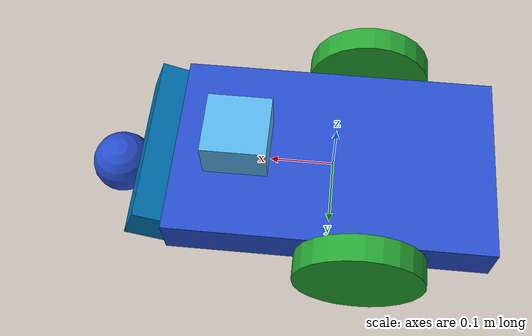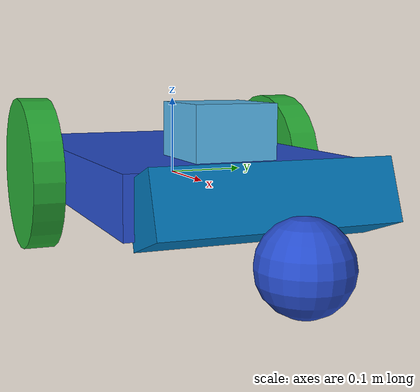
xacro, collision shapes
<?xml version='1.0'?>

<robot name="fouliex_bot" xmlns:xacro="http://www.ros.org/wiki/xacro">
    <xacro:include filename="$(find fouliex_bot)/urdf/fouliex_bot.gazebo"/>
    <xacro:include filename="$(find fouliex_bot)/urdf/materials.xacro" />
    <xacro:include filename="$(find fouliex_bot)/urdf/macros.xacro" />

    <link name="robot_footprint"></link>

    <joint name="robot_footprint_joint" type="fixed">
        <origin xyz="0 0 0" rpy="0 0 0"/>
        <parent link="robot_footprint"/>
        <child link="chassis"/>
    </joint>

    <!-- Chassis Link -->
    <link name="chassis">
     <!-- pose and inertial -->
     <pose>0 0 0.1 0 0 0</pose>
     <inertial>
       <mass value="5"/>
       <origin rpy="0 0 0" xyz="0 0 0.1"/>
       <inertia ixx="0.0395416666667" ixy="0" ixz="0" iyy="0.106208333333" iyz="0" izz="0.106208333333"/>
     </inertial>
     <!-- body -->
     <collision name="collision_chassis">
       <geometry>
         <box size="0.5 0.3 0.07"/>
       </geometry>
     </collision>
     <visual>
       <origin rpy="0 0 0" xyz="0 0 0"/>
       <geometry>
         <box size="0.5 0.3 0.07"/>
       </geometry>
       <material name="blue"/>
     </visual>
     <!-- caster front -->
     <collision name="caster_front_collision">
       <origin rpy=" 0 0 0" xyz="0.35 0 -0.05"/>
       <geometry>
         <sphere radius="0.05"/>
       </geometry>
       <surface>
         <friction>
           <ode>
             <mu>0</mu>
             <mu2>0</mu2>
             <slip1>1.0</slip1>
             <slip2>1.0</slip2>
           </ode>
         </friction>
       </surface>
     </collision>
     <visual name="caster_front_visual">
       <origin rpy=" 0 0 0" xyz="0.2 0 -0.05"/>
       <geometry>
         <sphere radius="0.05"/>
       </geometry>
     </visual>
    </link>

    <xacro:link_wheel name="right_wheel" />
    <xacro:joint_wheel name="right_wheel_hinge" child="right_wheel" origin_xyz="-0.05 0.18 0" />

    <xacro:link_wheel name="left_wheel" />
    <xacro:joint_wheel name="left_wheel_hinge" child="left_wheel" origin_xyz="-0.05 -0.18 0" />

    <link name="camera">
        <inertial>
            <mass value="0.01" />
            <origin xyz="0 0 0" />
            <inertia ixx="0.001" ixy="0.0" ixz="0.0"
                     iyy="0.001" iyz="0.0"
                     izz="0.001" />
        </inertial>

        <visual>
            <origin xyz=" 0 0 0 " rpy="0 0 0" />
            <geometry>
                <mesh filename="package://fouliex_bot/meshes/kinect.dae"/>
            </geometry>
        </visual>

        <collision>
            <origin xyz="0.0 0.0 0.0" rpy="0 0 0" />
            <geometry>
                <box size="0.0730 .2760 0.0720"/>
            </geometry>
        </collision>

    </link>

    <joint name="camera_depth_joint" type="fixed">
        <origin xyz="0 0.011 0" rpy="0 0 0" />
        <parent link="camera" />
        <child link="camera_depth_frame" />
    </joint>
    <link name="camera_depth_frame">
        <inertial>
            <mass value="0.01" />
            <origin xyz="0 0 0" />
            <inertia ixx="0.001" ixy="0.0" ixz="0.0"
                     iyy="0.001" iyz="0.0"
                     izz="0.001" />
        </inertial>
    </link>

    <joint name="camera_depth_optical_joint" type="fixed">
        <origin xyz="0 0 0" rpy="-1.57 0 -1.57" />
        <parent link="camera_depth_frame" />
        <child link="camera_depth_optical_frame" />
    </joint>

    <link name="camera_depth_optical_frame">
        <inertial>
            <mass value="0.001" />
            <origin xyz="0 0 0" />
            <inertia ixx="0.0001" ixy="0.0" ixz="0.0"
                     iyy="0.0001" iyz="0.0"
                     izz="0.0001" />
        </inertial>
    </link>

    <joint name="camera_rgb_joint" type="fixed">
        <origin xyz="0 -0.012 0" rpy="0 0 0" />
        <parent link="camera" />
        <child link="camera_rgb_frame" />
    </joint>

    <link name="camera_rgb_frame">
        <inertial>
            <mass value="0.001" />
            <origin xyz="0 0 0" />
            <inertia ixx="0.0001" ixy="0.0" ixz="0.0"
                     iyy="0.0001" iyz="0.0"
                     izz="0.0001" />
        </inertial>
    </link>

    <joint name="camera_rgb_optical_joint" type="fixed">
        <origin xyz="0 0 0" rpy="-1.57 0 -1.57" />
        <parent link="camera_rgb_frame" />
        <child link="camera_rgb_optical_frame" />
    </joint>

    <link name="camera_rgb_optical_frame">
        <inertial>
            <mass value="0.001" />
            <origin xyz="0 0 0" />
            <inertia ixx="0.0001" ixy="0.0" ixz="0.0"
                     iyy="0.0001" iyz="0.0"
                     izz="0.0001" />
        </inertial>
    </link>

    <!-- Camera Joint -->
    <joint name="base_camera_joint" type="fixed">
        <origin xyz="0.27 0 0" rpy="0 -0.349 0" />
        <parent link="chassis" />
        <child link="camera" />
    </joint>

    <!-- Laser RangeFinder(hokuyo) Link -->

    <link name="hokuyo">
      <inertial>
        <mass value="0.1"/>
        <origin xyz="0 0 0" rpy="0 0 0"/>
        <inertia
                ixx="1e-6" ixy="0" ixz="0"
                iyy="1e-6" iyz="0"
                izz="1e-6" />
      </inertial>
      <visual>
        <geometry>
          <mesh filename="package://fouliex_bot/meshes/hokuyo.dae"/>
        </geometry>
        <origin xyz="0 0 0" rpy="0 0 0"/>
      </visual>
      <collision>
        <geometry>
          <box size="0.1 0.1 0.1"/>
        </geometry>
        <origin xyz="0 0 0" rpy="0 0 0"/>
      </collision>
    </link>

    <!-- Laser RangeFinder(hokuyo) Link -->
    <joint type="fixed" name="hokuyo_joint">
        <origin xyz="0.15 0 0.05" rpy="0 0 0"/>
        <child link="hokuyo"/>
        <parent link="chassis"/>
    </joint>

</robot>

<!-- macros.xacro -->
<robot xmlns:xacro="http://www.ros.org/wiki/xacro">
    <xacro:macro name="link_wheel" params="name">
        <link name="${name}">
            <inertial>
              <mass value="0.2"/>
              <origin rpy="0 1.5707 1.5707" xyz="0 0 0"/>
              <inertia ixx="0.000526666666667" ixy="0" ixz="0" iyy="0.000526666666667" iyz="0" izz="0.001"/>
            </inertial>
            <collision name="link_right_wheel_collision">
              <origin rpy="0 1.5707 1.5707" xyz="0 0 0"/>
              <geometry>
                <cylinder length="0.04" radius="0.1"/>
              </geometry>
            </collision>
            <visual name="${name}_visual">
              <origin rpy="0 1.5707 1.5707" xyz="0 0 0"/>
              <geometry>
                <cylinder length="0.04" radius="0.1"/>
              </geometry>
            </visual>
        </link>
    </xacro:macro>

    <xacro:macro name="joint_wheel" params="name child origin_xyz">
      <joint name="${name}" type="continuous">
        <origin rpy="0 0 0" xyz="${origin_xyz}"/>
        <child link="${child}"/>
        <parent link="chassis"/>
        <axis rpy="0 0 0" xyz="0 1 0"/>
        <limit effort="10000" velocity="1000"/>
        <joint_properties damping="1.0" friction="1.0"/>
      </joint>
    </xacro:macro>

    <xacro:macro name="cylinder_inertia" params="mass r l">
      <inertia  ixx="${mass*(3*r*r+l*l)/12}" ixy = "0" ixz = "0"
                iyy="${mass*(3*r*r+l*l)/12}" iyz = "0"
                izz="${mass*(r*r)/2}" />
    </xacro:macro>
</robot>
